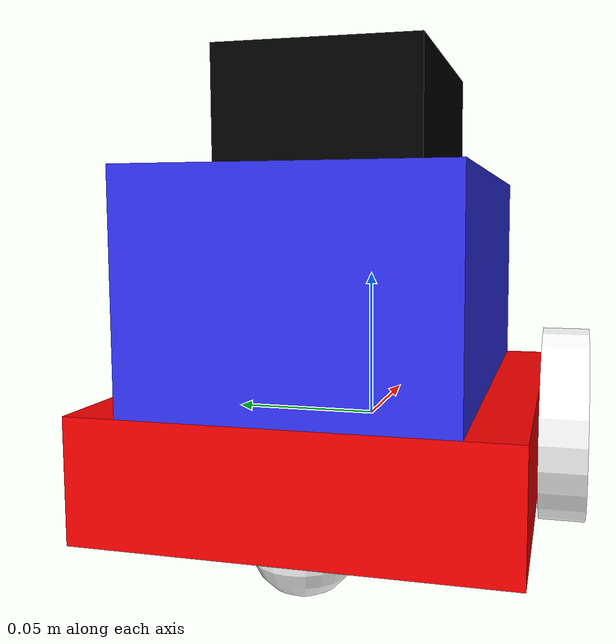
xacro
<?xml version="1.0"?>
<robot xmlns:xacro="http://www.ros.org/wiki/xacro">

    <xacro:include filename="inertial_macros.xacro" />

    <material name="white">
        <color rgba="1 1 1 1" />
    </material>

    <material name="orange">
        <color rgba="1 0.3 0.1 1" />
    </material>

    <material name="blue">
        <color rgba="0.2 0.2 1 1" />
    </material>

    <material name="black">
        <color rgba="0 0 0 1" />
    </material>

    <material name="red">
        <color rgba="1 0 0 1" />
    </material>

    <link name="base_link">
    </link>

    <joint name="chassis_joint" type="fixed">
        <parent link="base_link"/>
        <child link="chassis"/>
        <origin xyz="-0.097 0 0"/>
    </joint>

    <link name="chassis">
        <visual>
            <origin xyz="0.07 0 0" />
            <geometry>
                <box size="0.14 0.12 0.035"/>
            </geometry>
            <material name="red"/>
        </visual>
        <collision>
            <origin xyz="0.07 0 0" />
            <geometry>
                <box size="0.14 0.12 0.035"/>
            </geometry>
        </collision>
        <xacro:inertial_box mass="0.25" x="0.14" y="0.12" z="0.035">
            <origin xyz="0.07 0 0" rpy="0 0 0" /> </xacro:inertial_box>

    </link>

    <gazebo reference="chassis">
        <material>Gazebo/Red</material>
    </gazebo>

    <joint name="left_wheel_joint" type="continuous">
        <parent link="base_link"/>
        <child link="left_wheel"/>
        <origin xyz="0 0.0675 0" rpy="${-pi/2} 0 0"/>
        <axis xyz="0 0 1"/>
    </joint>

    <link name="left_wheel">
        <visual>
            <geometry>
                <cylinder radius="0.0325" length="0.015"/>
            </geometry>
            <material name="white"/>
        </visual>
        <collision>
            <geometry>
                <cylinder radius="0.0325" length="0.015"/>
            </geometry>
        </collision>
        <xacro:inertial_cylinder mass="0.1" length="0.015" radius="0.0325"> <origin xyz="0 0 0" rpy="0 0 0" /> </xacro:inertial_cylinder>
    </link>

    <gazebo reference="left_wheel">
        <material>Gazebo/White</material>
    </gazebo>

    <joint name="right_wheel_joint" type="continuous">
        <parent link="base_link"/>
        <child link="right_wheel"/>
        <origin xyz="0 -0.0675 0" rpy="${pi/2} 0 0"/>
        <axis xyz="0 0 -1"/>
    </joint>

    <link name="right_wheel">
        <visual>
            <geometry>
                <cylinder radius="0.0325" length="0.015"/>
            </geometry>
            <material name="white"/>
        </visual>
        <collision>
            <geometry>
                <cylinder radius="0.0325" length="0.015"/>
            </geometry>
        </collision>
        <xacro:inertial_cylinder mass="0.1" length="0.015" radius="0.0325"> <origin xyz="0 0 0" rpy="0 0 0" /> </xacro:inertial_cylinder>
    </link>

    <gazebo reference="right_wheel">
        <material>Gazebo/White</material>
    </gazebo>

    <joint name="caster_wheel_joint" type="fixed">
        <parent link="chassis"/>
        <child link="caster_wheel"/>
        <origin xyz="0.02 0 -0.0175"/>
    </joint>

    <link name="caster_wheel">
        <visual>
            <geometry>
                <sphere radius="0.015"/>
            </geometry>
            <material name="white"/>
        </visual>
        <collision>
            <geometry>
                <sphere radius="0.015"/>
            </geometry>
        </collision>
        <xacro:inertial_sphere mass="0.1" radius="0.015">
            <origin xyz="0 0 0" rpy="0 0 0" /> </xacro:inertial_sphere>
    </link>

    <joint name="chassis_2_joint" type="fixed">
        <parent link="chassis"/>
        <child link="chassis_2"/>
        <origin xyz="0 0 0"/>
    </joint>

    <link name="chassis_2">
        <visual>
            <origin xyz="0.07 0 0.05" />
            <geometry>
                <box size="0.14 0.09 0.065"/>
            </geometry>
            <material name="blue"/>
        </visual>
        <collision>
            <origin xyz="0.07 0 0.05" />
            <geometry>
                <box size="0.14 0.09 0.065"/>
            </geometry>
        </collision>
        <xacro:inertial_box mass="0.2" x="0.14" y="0.09" z="0.065">
            <origin xyz="0.07 0 0.05" rpy="0 0 0" /> </xacro:inertial_box>

    </link>

    <joint name="chassis_3_joint" type="fixed">
        <parent link="chassis_2"/>
        <child link="chassis_3"/>
        <origin xyz="0 0 0"/>
    </joint>

    <link name="chassis_3">
        <visual>
            <origin xyz="0.07 0 0.1" />
            <geometry>
                <box size="0.08 0.06 0.035"/>
            </geometry>
            <material name="black"/>
        </visual>
        <collision>
            <origin xyz="0.07 0 0.1" />
            <geometry>
                <box size="0.08 0.06 0.035"/>
            </geometry>
        </collision>
        <xacro:inertial_box mass="0.2" x="0.08" y="0.06" z="0.035">
            <origin xyz="0.07 0 0.1" rpy="0 0 0" /> </xacro:inertial_box>

    </link>

    <gazebo reference="chassis_2">
        <material>Gazebo/Blue</material>
    </gazebo>
    <gazebo reference="chassis_3">
        <material>Gazebo/Black</material>
    </gazebo>
    <gazebo reference="caster_wheel">
        <material>Gazebo/White</material>
        <mu1 value="0.001"/>
        <mu2 value="0.001"/>
    </gazebo>

</robot>

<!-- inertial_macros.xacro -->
<robot xmlns:xacro="http://www.ros.org/wiki/xacro" >

    <xacro:macro name="inertial_sphere" params="mass radius *origin">
        <inertial>
            <xacro:insert_block name="origin"/>
            <mass value="${mass}" />
            <inertia ixx="${(2/5) * mass * (radius*radius)}" ixy="0.0" ixz="0.0"
                     iyy="${(2/5) * mass * (radius*radius)}" iyz="0.0"
                     izz="${(2/5) * mass * (radius*radius)}" />
        </inertial>
    </xacro:macro>

    <xacro:macro name="inertial_box" params="mass x y z *origin">
        <inertial>
            <xacro:insert_block name="origin"/>
            <mass value="${mass}" />
            <inertia ixx="${(1/12) * mass * (y*y + z*z)}" ixy="0.0" ixz="0.0"
                     iyy="${(1/12) * mass * (x*x + z*z)}" iyz="0.0"
                     izz="${(1/12) * mass * (x*x + y*y)}" />
        </inertial>
    </xacro:macro>

    <xacro:macro name="inertial_cylinder" params="mass length radius *origin">
        <inertial>
            <xacro:insert_block name="origin"/>
            <mass value="${mass}" />
            <inertia ixx="${(1/12) * mass * (3*radius*radius + length*length)}" ixy="0.0" ixz="0.0"
                     iyy="${(1/12) * mass * (3*radius*radius + length*length)}" iyz="0.0"
                     izz="${(1/2) * mass * (radius*radius)}" />
        </inertial>
    </xacro:macro>

</robot>
